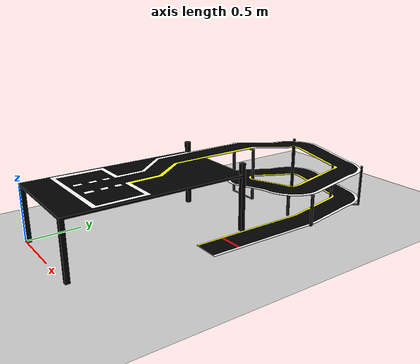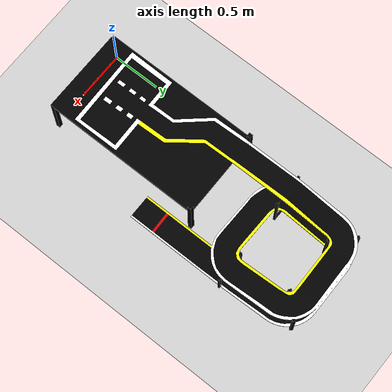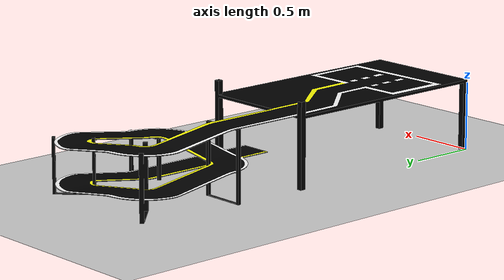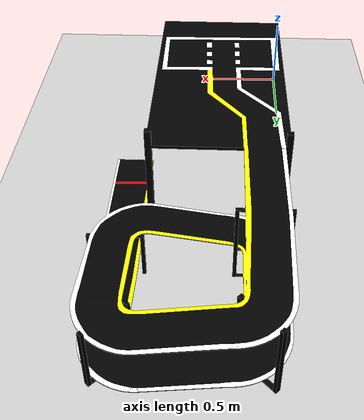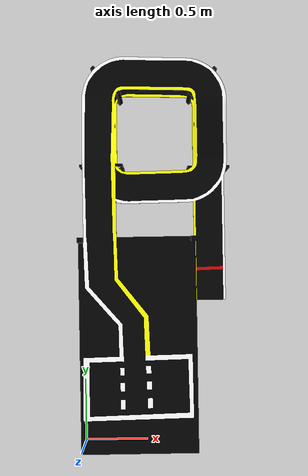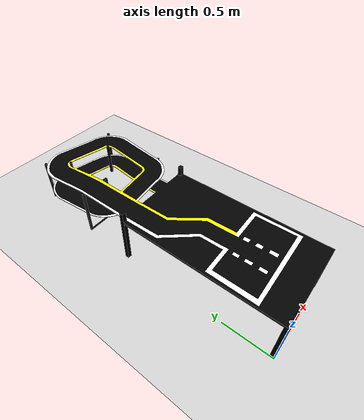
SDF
<?xml version="1.0"?>
<sdf version="1.8">
  <world name="ramp_world">

    <!-- Physics and required system plugins for Gazebo Harmonic -->
    <physics name="1ms" type="ignored">
      <max_step_size>0.001</max_step_size>
      <real_time_factor>1.0</real_time_factor>
    </physics>

    <plugin filename="gz-sim-physics-system"
            name="gz::sim::systems::Physics"/>

    <plugin filename="gz-sim-user-commands-system"
            name="gz::sim::systems::UserCommands"/>

    <plugin filename="gz-sim-scene-broadcaster-system"
            name="gz::sim::systems::SceneBroadcaster"/>

    <plugin filename="gz-sim-sensors-system"
            name="gz::sim::systems::Sensors">
      <render_engine>ogre2</render_engine>
    </plugin>

    <plugin filename="gz-sim-imu-system"
            name="gz::sim::systems::Imu"/>

    <!-- Sun light -->
    <light type="directional" name="sun">
      <cast_shadows>true</cast_shadows>
      <pose>0 0 10 0 0 0</pose>
      <diffuse>0.8 0.8 0.8 1</diffuse>
      <specular>0.2 0.2 0.2 1</specular>
      <attenuation>
        <range>1000</range>
        <constant>0.9</constant>
        <linear>0.01</linear>
        <quadratic>0.001</quadratic>
      </attenuation>
      <direction>-0.5 0.1 -0.9</direction>
    </light>

    <!-- Ground plane -->
    <model name="ground_plane">
      <static>true</static>
      <link name="link">
        <collision name="collision">
          <geometry>
            <plane>
              <normal>0 0 1</normal>
              <size>100 100</size>
            </plane>
          </geometry>
        </collision>
        <visual name="visual">
          <geometry>
            <plane>
              <normal>0 0 1</normal>
              <size>100 100</size>
            </plane>
          </geometry>
          <material>
            <ambient>0.8 0.8 0.8 1</ambient>
            <diffuse>0.8 0.8 0.8 1</diffuse>
            <specular>0.8 0.8 0.8 1</specular>
          </material>
        </visual>
      </link>
    </model>

    <!-- Custom ramp track model -->
    <include>
      <uri>model://ramp_model</uri>
      <pose>0 0 0 0 0 0</pose>
    </include>

  </world>
</sdf>

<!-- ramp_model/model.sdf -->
<sdf version="1.8">
  <model name="ramp_model">
    <static>true</static>
    <link name="link">
      <collision name="collision">
        <geometry>
          <mesh>
            <uri>model://ramp_model/meshes/ramp.dae</uri>
          </mesh>
        </geometry>
        <surface>
          <friction>
            <ode>
              <mu>1.0</mu>
              <mu2>1.0</mu2>
            </ode>
          </friction>
        </surface>
      </collision>
      <visual name="visual">
        <geometry>
          <mesh>
            <uri>model://ramp_model/meshes/ramp.dae</uri>
          </mesh>
        </geometry>
      </visual>
    </link>
  </model>
</sdf>
